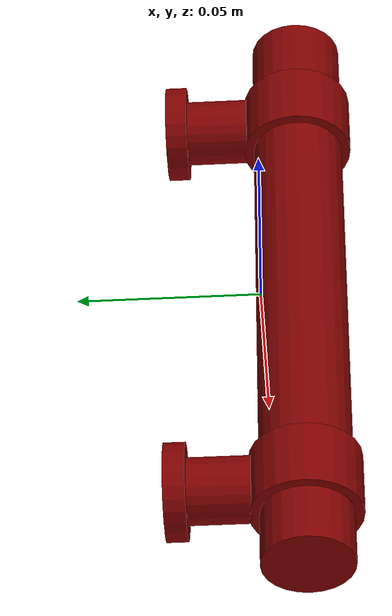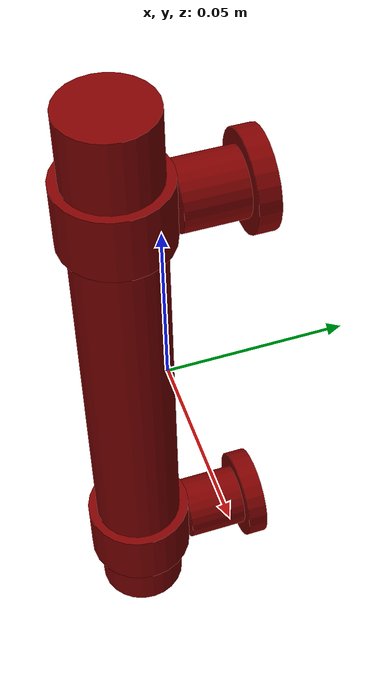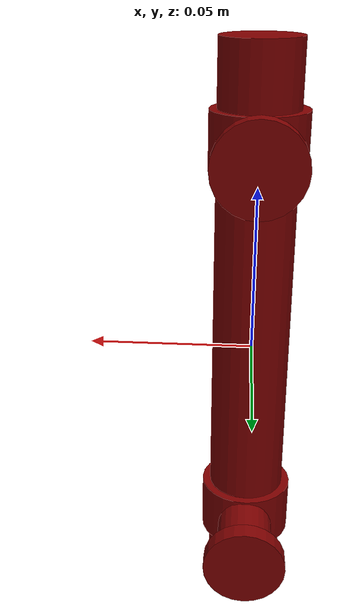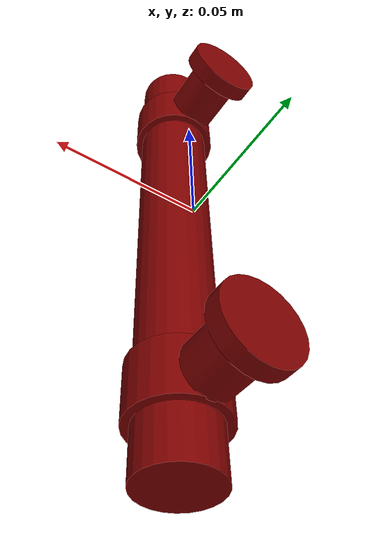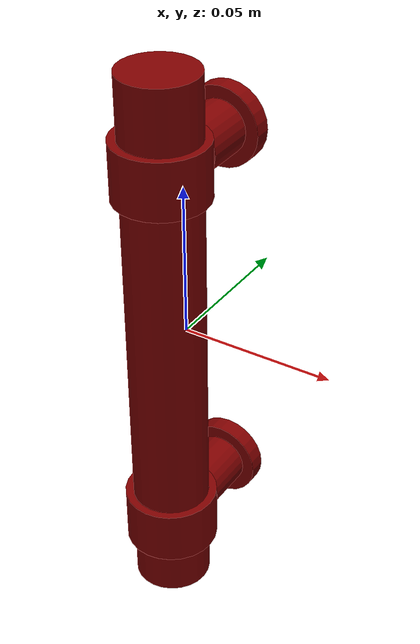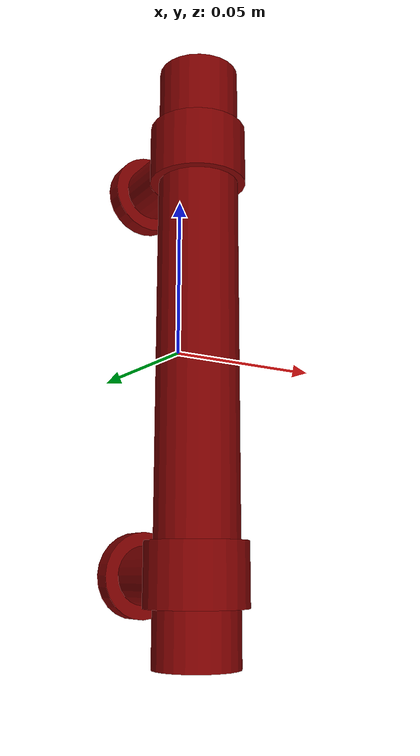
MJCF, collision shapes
<?xml version='1.0' encoding='UTF-8'?>
<mujoco model="model">
  <option timestep="0.002" gravity="0.0 0.0 -9.81"/>
  <compiler angle="radian"/>
  <asset>
    <mesh file="visuals/CabinetHandle019.obj" name="CabinetHandle019_vis"/>
    <texture file="visuals/T_BC001.png" name="tex" type="2d"/>
    <material name="mat" rgba="1 1 1 1.0" texture="tex" shininess="0.4472135901451111" specular="0.3103448502657381"/>
  </asset>
  <default>
    <default class="visual">
      <geom conaffinity="0" contype="0" group="1" type="mesh"/>
    </default>
    <default class="collision">
      <geom group="0" rgba="0.5 0 0 0.5" density="1.0" solref="0.004 1" solimp="0.998 0.998 0.001"/>
    </default>
    <default class="spawn">
      <geom group="0" rgba="1 1 1 0.5" contype="0" conaffinity="0"/>
      <site group="0" rgba="1 1 1 0.5"/>
    </default>
    <default class="region">
      <geom group="1" conaffinity="0" contype="0" rgba="0 1 0 0" mass="0"/>
    </default>
  </default>
  <worldbody>
    <body>
      <body name="object">
        <geom mesh="CabinetHandle019_vis" type="mesh" solimp="0.998 0.998 0.001" solref="0.001 1" friction="0.95 0.3 0.1" class="visual" material="mat"/>
        <geom type="cylinder" pos="0.0001500127254985273 -0.011070804670453072 3.872638990287669e-05" size="0.012377111241221428 0.0903298631310463" quat="1.0 0.0 0.0 0.0" class="collision"/>
        <geom type="cylinder" pos="-2.5203069526469335e-05 -0.01102266926318407 0.06118898466229439" size="0.014871686697006226 0.009155581705272198" quat="1.0 0.0 0.0 0.0" class="collision"/>
        <geom type="cylinder" pos="8.709750545676798e-05 -0.010966045781970024 -0.06546279042959213" size="0.014983605593442917 0.00911396462470293" quat="1.0 0.0 0.0 0.0" class="collision"/>
        <geom type="cylinder" pos="0.0001500127254985273 0.022698478773236275 0.060910098254680634" size="0.013053048402071 0.0028793602250516415" quat="0.7071067094802856 -0.7071068286895752 -1.5700929612083792e-16 -2.2148510003422914e-23" class="collision"/>
        <geom type="cylinder" pos="0.0001500127254985273 0.011739756911993027 0.06096480041742325" size="0.008922817185521126 0.00860213115811348" quat="0.7071067094802856 -0.7071068286895752 -1.5700929612083792e-16 -2.2148510003422914e-23" class="collision"/>
        <geom type="cylinder" pos="0.0001500127254985273 0.022698478773236275 -0.06590615212917328" size="0.013053048402071 0.0028793602250516415" quat="0.7071067094802856 -0.7071068286895752 -1.5700929612083792e-16 -2.2148510003422914e-23" class="collision"/>
        <geom type="cylinder" pos="0.0001500127254985273 0.011739756911993027 -0.06585144996643066" size="0.008922817185521126 0.00860213115811348" quat="0.7071067094802856 -0.7071068286895752 -1.5700929612083792e-16 -2.2148510003422914e-23" class="collision"/>
        <geom class="region" name="reg_main" type="box" pos="2.3283064365386963e-10 0.0 0.0" size="0.015730713330209256 0.026808461010456086 0.0910183916091919"/>
      </body>
    </body>
  </worldbody>
  <actuator/>
</mujoco>
